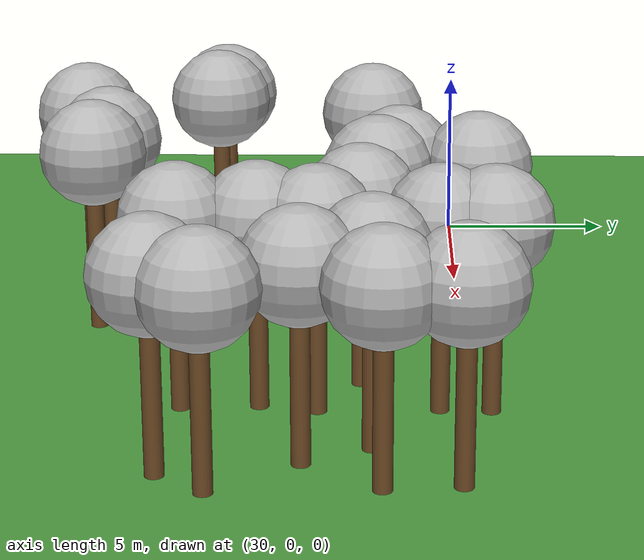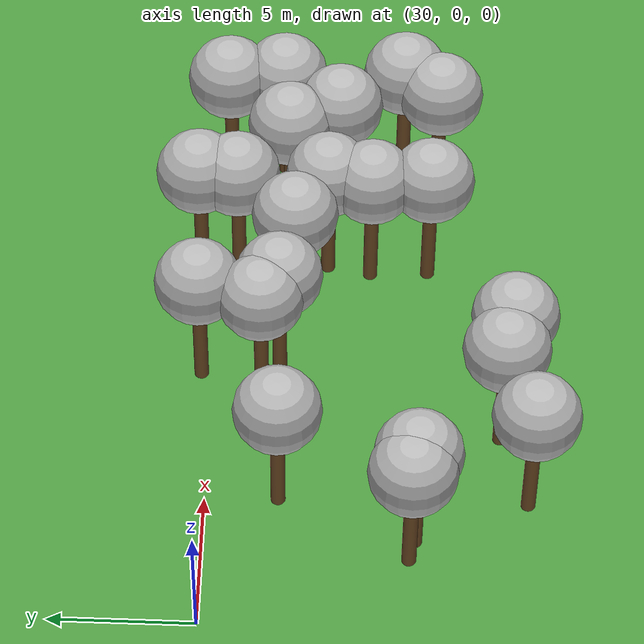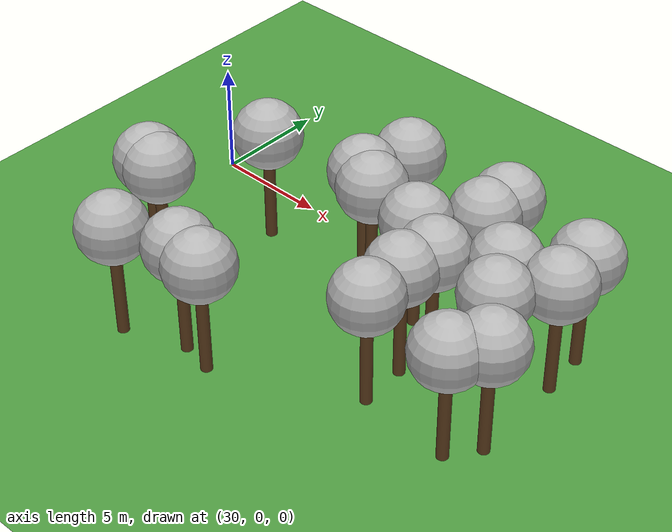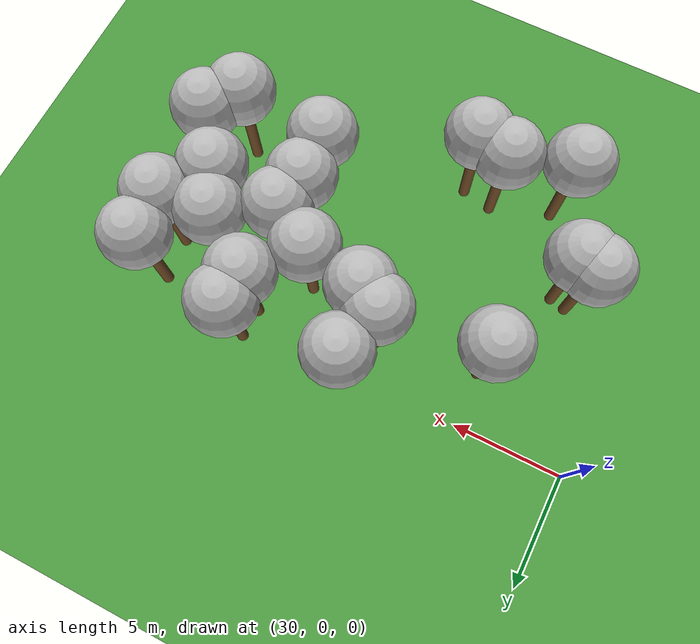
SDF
<sdf version="1.5">
 <world name="default">
  <model name="tree_simple499">
   <static>1</static>
   <link name="link">
    <pose>0 0 0.1 0 -0 0</pose>
    <collision name="collision_trunk">
     <pose>0 0 2 0 -0 0</pose>
     <geometry><cylinder><radius>0.25</radius><length>4</length></cylinder></geometry>
    </collision>
    <collision name="collision_treetop">
     <pose>0 0 5.2 0 -0 0</pose>
     <geometry><sphere><radius>1.5</radius></sphere></geometry>
    </collision>
    <visual name="trunk">
     <pose>0 0 2 0 -0 0</pose>
     <geometry><cylinder><radius>0.25</radius><length>4</length></cylinder></geometry>
     <material>
      <script>
       <uri>model://tree_simple/scripts</uri>
       <uri>model://tree_simple/materials/textures</uri>
       <name>TreeSimple/Trunk</name>
      </script>
     </material>
    </visual>
    <visual name="treetop">
     <pose>0 0 5.2 0 -0 0</pose>
     <geometry><sphere><radius>1.5</radius></sphere></geometry>
     <material>
      <script>
       <uri>model://tree_simple/scripts</uri>
       <uri>model://tree_simple/materials/textures</uri>
       <name>TreeSimple/Treetop</name>
      </script>
     </material>
    </visual>
   </link>
   <pose>49.5772894431 -0.301033806291 0 0 -0 0</pose>
  </model>
  <model name="tree_simple468">
   <static>1</static>
   <link name="link">
    <pose>0 0 0.1 0 -0 0</pose>
    <collision name="collision_trunk">
     <pose>0 0 2 0 -0 0</pose>
     <geometry><cylinder><radius>0.25</radius><length>4</length></cylinder></geometry>
    </collision>
    <collision name="collision_treetop">
     <pose>0 0 5.2 0 -0 0</pose>
     <geometry><sphere><radius>1.5</radius></sphere></geometry>
    </collision>
    <visual name="trunk">
     <pose>0 0 2 0 -0 0</pose>
     <geometry><cylinder><radius>0.25</radius><length>4</length></cylinder></geometry>
     <material>
      <script>
       <uri>model://tree_simple/scripts</uri>
       <uri>model://tree_simple/materials/textures</uri>
       <name>TreeSimple/Trunk</name>
      </script>
     </material>
    </visual>
    <visual name="treetop">
     <pose>0 0 5.2 0 -0 0</pose>
     <geometry><sphere><radius>1.5</radius></sphere></geometry>
     <material>
      <script>
       <uri>model://tree_simple/scripts</uri>
       <uri>model://tree_simple/materials/textures</uri>
       <name>TreeSimple/Treetop</name>
      </script>
     </material>
    </visual>
   </link>
   <pose>33.4354348071 -7.20044037788 0 0 -0 0</pose>
  </model>
  <model name="tree_simple391">
   <static>1</static>
   <link name="link">
    <pose>0 0 0.1 0 -0 0</pose>
    <collision name="collision_trunk">
     <pose>0 0 2 0 -0 0</pose>
     <geometry><cylinder><radius>0.25</radius><length>4</length></cylinder></geometry>
    </collision>
    <collision name="collision_treetop">
     <pose>0 0 5.2 0 -0 0</pose>
     <geometry><sphere><radius>1.5</radius></sphere></geometry>
    </collision>
    <visual name="trunk">
     <pose>0 0 2 0 -0 0</pose>
     <geometry><cylinder><radius>0.25</radius><length>4</length></cylinder></geometry>
     <material>
      <script>
       <uri>model://tree_simple/scripts</uri>
       <uri>model://tree_simple/materials/textures</uri>
       <name>TreeSimple/Trunk</name>
      </script>
     </material>
    </visual>
    <visual name="treetop">
     <pose>0 0 5.2 0 -0 0</pose>
     <geometry><sphere><radius>1.5</radius></sphere></geometry>
     <material>
      <script>
       <uri>model://tree_simple/scripts</uri>
       <uri>model://tree_simple/materials/textures</uri>
       <name>TreeSimple/Treetop</name>
      </script>
     </material>
    </visual>
   </link>
   <pose>35.0521422103 -11.0450283788 0 0 -0 0</pose>
  </model>
  <model name="tree_simple385">
   <static>1</static>
   <link name="link">
    <pose>0 0 0.1 0 -0 0</pose>
    <collision name="collision_trunk">
     <pose>0 0 2 0 -0 0</pose>
     <geometry><cylinder><radius>0.25</radius><length>4</length></cylinder></geometry>
    </collision>
    <collision name="collision_treetop">
     <pose>0 0 5.2 0 -0 0</pose>
     <geometry><sphere><radius>1.5</radius></sphere></geometry>
    </collision>
    <visual name="trunk">
     <pose>0 0 2 0 -0 0</pose>
     <geometry><cylinder><radius>0.25</radius><length>4</length></cylinder></geometry>
     <material>
      <script>
       <uri>model://tree_simple/scripts</uri>
       <uri>model://tree_simple/materials/textures</uri>
       <name>TreeSimple/Trunk</name>
      </script>
     </material>
    </visual>
    <visual name="treetop">
     <pose>0 0 5.2 0 -0 0</pose>
     <geometry><sphere><radius>1.5</radius></sphere></geometry>
     <material>
      <script>
       <uri>model://tree_simple/scripts</uri>
       <uri>model://tree_simple/materials/textures</uri>
       <name>TreeSimple/Treetop</name>
      </script>
     </material>
    </visual>
   </link>
   <pose>32.6946046779 -7.01468529962 0 0 -0 0</pose>
  </model>
  <model name="tree_simple380">
   <static>1</static>
   <link name="link">
    <pose>0 0 0.1 0 -0 0</pose>
    <collision name="collision_trunk">
     <pose>0 0 2 0 -0 0</pose>
     <geometry><cylinder><radius>0.25</radius><length>4</length></cylinder></geometry>
    </collision>
    <collision name="collision_treetop">
     <pose>0 0 5.2 0 -0 0</pose>
     <geometry><sphere><radius>1.5</radius></sphere></geometry>
    </collision>
    <visual name="trunk">
     <pose>0 0 2 0 -0 0</pose>
     <geometry><cylinder><radius>0.25</radius><length>4</length></cylinder></geometry>
     <material>
      <script>
       <uri>model://tree_simple/scripts</uri>
       <uri>model://tree_simple/materials/textures</uri>
       <name>TreeSimple/Trunk</name>
      </script>
     </material>
    </visual>
    <visual name="treetop">
     <pose>0 0 5.2 0 -0 0</pose>
     <geometry><sphere><radius>1.5</radius></sphere></geometry>
     <material>
      <script>
       <uri>model://tree_simple/scripts</uri>
       <uri>model://tree_simple/materials/textures</uri>
       <name>TreeSimple/Treetop</name>
      </script>
     </material>
    </visual>
   </link>
   <pose>49.0222625073 -7.79616728684 0 0 -0 0</pose>
  </model>
  <model name="tree_simple378">
   <static>1</static>
   <link name="link">
    <pose>0 0 0.1 0 -0 0</pose>
    <collision name="collision_trunk">
     <pose>0 0 2 0 -0 0</pose>
     <geometry><cylinder><radius>0.25</radius><length>4</length></cylinder></geometry>
    </collision>
    <collision name="collision_treetop">
     <pose>0 0 5.2 0 -0 0</pose>
     <geometry><sphere><radius>1.5</radius></sphere></geometry>
    </collision>
    <visual name="trunk">
     <pose>0 0 2 0 -0 0</pose>
     <geometry><cylinder><radius>0.25</radius><length>4</length></cylinder></geometry>
     <material>
      <script>
       <uri>model://tree_simple/scripts</uri>
       <uri>model://tree_simple/materials/textures</uri>
       <name>TreeSimple/Trunk</name>
      </script>
     </material>
    </visual>
    <visual name="treetop">
     <pose>0 0 5.2 0 -0 0</pose>
     <geometry><sphere><radius>1.5</radius></sphere></geometry>
     <material>
      <script>
       <uri>model://tree_simple/scripts</uri>
       <uri>model://tree_simple/materials/textures</uri>
       <name>TreeSimple/Treetop</name>
      </script>
     </material>
    </visual>
   </link>
   <pose>45.079812121 -0.754391736344 0 0 -0 0</pose>
  </model>
  <model name="tree_simple363">
   <static>1</static>
   <link name="link">
    <pose>0 0 0.1 0 -0 0</pose>
    <collision name="collision_trunk">
     <pose>0 0 2 0 -0 0</pose>
     <geometry><cylinder><radius>0.25</radius><length>4</length></cylinder></geometry>
    </collision>
    <collision name="collision_treetop">
     <pose>0 0 5.2 0 -0 0</pose>
     <geometry><sphere><radius>1.5</radius></sphere></geometry>
    </collision>
    <visual name="trunk">
     <pose>0 0 2 0 -0 0</pose>
     <geometry><cylinder><radius>0.25</radius><length>4</length></cylinder></geometry>
     <material>
      <script>
       <uri>model://tree_simple/scripts</uri>
       <uri>model://tree_simple/materials/textures</uri>
       <name>TreeSimple/Trunk</name>
      </script>
     </material>
    </visual>
    <visual name="treetop">
     <pose>0 0 5.2 0 -0 0</pose>
     <geometry><sphere><radius>1.5</radius></sphere></geometry>
     <material>
      <script>
       <uri>model://tree_simple/scripts</uri>
       <uri>model://tree_simple/materials/textures</uri>
       <name>TreeSimple/Treetop</name>
      </script>
     </material>
    </visual>
   </link>
   <pose>45.144398785 0.58220424318 0 0 -0 0</pose>
  </model>
  <model name="tree_simple352">
   <static>1</static>
   <link name="link">
    <pose>0 0 0.1 0 -0 0</pose>
    <collision name="collision_trunk">
     <pose>0 0 2 0 -0 0</pose>
     <geometry><cylinder><radius>0.25</radius><length>4</length></cylinder></geometry>
    </collision>
    <collision name="collision_treetop">
     <pose>0 0 5.2 0 -0 0</pose>
     <geometry><sphere><radius>1.5</radius></sphere></geometry>
    </collision>
    <visual name="trunk">
     <pose>0 0 2 0 -0 0</pose>
     <geometry><cylinder><radius>0.25</radius><length>4</length></cylinder></geometry>
     <material>
      <script>
       <uri>model://tree_simple/scripts</uri>
       <uri>model://tree_simple/materials/textures</uri>
       <name>TreeSimple/Trunk</name>
      </script>
     </material>
    </visual>
    <visual name="treetop">
     <pose>0 0 5.2 0 -0 0</pose>
     <geometry><sphere><radius>1.5</radius></sphere></geometry>
     <material>
      <script>
       <uri>model://tree_simple/scripts</uri>
       <uri>model://tree_simple/materials/textures</uri>
       <name>TreeSimple/Treetop</name>
      </script>
     </material>
    </visual>
   </link>
   <pose>37.7714253308 -10.085576638 0 0 -0 0</pose>
  </model>
  <model name="tree_simple244">
   <static>1</static>
   <link name="link">
    <pose>0 0 0.1 0 -0 0</pose>
    <collision name="collision_trunk">
     <pose>0 0 2 0 -0 0</pose>
     <geometry><cylinder><radius>0.25</radius><length>4</length></cylinder></geometry>
    </collision>
    <collision name="collision_treetop">
     <pose>0 0 5.2 0 -0 0</pose>
     <geometry><sphere><radius>1.5</radius></sphere></geometry>
    </collision>
    <visual name="trunk">
     <pose>0 0 2 0 -0 0</pose>
     <geometry><cylinder><radius>0.25</radius><length>4</length></cylinder></geometry>
     <material>
      <script>
       <uri>model://tree_simple/scripts</uri>
       <uri>model://tree_simple/materials/textures</uri>
       <name>TreeSimple/Trunk</name>
      </script>
     </material>
    </visual>
    <visual name="treetop">
     <pose>0 0 5.2 0 -0 0</pose>
     <geometry><sphere><radius>1.5</radius></sphere></geometry>
     <material>
      <script>
       <uri>model://tree_simple/scripts</uri>
       <uri>model://tree_simple/materials/textures</uri>
       <name>TreeSimple/Treetop</name>
      </script>
     </material>
    </visual>
   </link>
   <pose>45.1720023685 -3.9344800414 0 0 -0 0</pose>
  </model>
  <model name="tree_simple235">
   <static>1</static>
   <link name="link">
    <pose>0 0 0.1 0 -0 0</pose>
    <collision name="collision_trunk">
     <pose>0 0 2 0 -0 0</pose>
     <geometry><cylinder><radius>0.25</radius><length>4</length></cylinder></geometry>
    </collision>
    <collision name="collision_treetop">
     <pose>0 0 5.2 0 -0 0</pose>
     <geometry><sphere><radius>1.5</radius></sphere></geometry>
    </collision>
    <visual name="trunk">
     <pose>0 0 2 0 -0 0</pose>
     <geometry><cylinder><radius>0.25</radius><length>4</length></cylinder></geometry>
     <material>
      <script>
       <uri>model://tree_simple/scripts</uri>
       <uri>model://tree_simple/materials/textures</uri>
       <name>TreeSimple/Trunk</name>
      </script>
     </material>
    </visual>
    <visual name="treetop">
     <pose>0 0 5.2 0 -0 0</pose>
     <geometry><sphere><radius>1.5</radius></sphere></geometry>
     <material>
      <script>
       <uri>model://tree_simple/scripts</uri>
       <uri>model://tree_simple/materials/textures</uri>
       <name>TreeSimple/Treetop</name>
      </script>
     </material>
    </visual>
   </link>
   <pose>47.4649473564 -2.51877980815 0 0 -0 0</pose>
  </model>
  <model name="tree_simple217">
   <static>1</static>
   <link name="link">
    <pose>0 0 0.1 0 -0 0</pose>
    <collision name="collision_trunk">
     <pose>0 0 2 0 -0 0</pose>
     <geometry><cylinder><radius>0.25</radius><length>4</length></cylinder></geometry>
    </collision>
    <collision name="collision_treetop">
     <pose>0 0 5.2 0 -0 0</pose>
     <geometry><sphere><radius>1.5</radius></sphere></geometry>
    </collision>
    <visual name="trunk">
     <pose>0 0 2 0 -0 0</pose>
     <geometry><cylinder><radius>0.25</radius><length>4</length></cylinder></geometry>
     <material>
      <script>
       <uri>model://tree_simple/scripts</uri>
       <uri>model://tree_simple/materials/textures</uri>
       <name>TreeSimple/Trunk</name>
      </script>
     </material>
    </visual>
    <visual name="treetop">
     <pose>0 0 5.2 0 -0 0</pose>
     <geometry><sphere><radius>1.5</radius></sphere></geometry>
     <material>
      <script>
       <uri>model://tree_simple/scripts</uri>
       <uri>model://tree_simple/materials/textures</uri>
       <name>TreeSimple/Treetop</name>
      </script>
     </material>
    </visual>
   </link>
   <pose>49.7701486167 -2.25839681325 0 0 -0 0</pose>
  </model>
  <model name="tree_simple210">
   <static>1</static>
   <link name="link">
    <pose>0 0 0.1 0 -0 0</pose>
    <collision name="collision_trunk">
     <pose>0 0 2 0 -0 0</pose>
     <geometry><cylinder><radius>0.25</radius><length>4</length></cylinder></geometry>
    </collision>
    <collision name="collision_treetop">
     <pose>0 0 5.2 0 -0 0</pose>
     <geometry><sphere><radius>1.5</radius></sphere></geometry>
    </collision>
    <visual name="trunk">
     <pose>0 0 2 0 -0 0</pose>
     <geometry><cylinder><radius>0.25</radius><length>4</length></cylinder></geometry>
     <material>
      <script>
       <uri>model://tree_simple/scripts</uri>
       <uri>model://tree_simple/materials/textures</uri>
       <name>TreeSimple/Trunk</name>
      </script>
     </material>
    </visual>
    <visual name="treetop">
     <pose>0 0 5.2 0 -0 0</pose>
     <geometry><sphere><radius>1.5</radius></sphere></geometry>
     <material>
      <script>
       <uri>model://tree_simple/scripts</uri>
       <uri>model://tree_simple/materials/textures</uri>
       <name>TreeSimple/Treetop</name>
      </script>
     </material>
    </visual>
   </link>
   <pose>49.9611404215 -6.54237160605 0 0 -0 0</pose>
  </model>
  <model name="tree_simple204">
   <static>1</static>
   <link name="link">
    <pose>0 0 0.1 0 -0 0</pose>
    <collision name="collision_trunk">
     <pose>0 0 2 0 -0 0</pose>
     <geometry><cylinder><radius>0.25</radius><length>4</length></cylinder></geometry>
    </collision>
    <collision name="collision_treetop">
     <pose>0 0 5.2 0 -0 0</pose>
     <geometry><sphere><radius>1.5</radius></sphere></geometry>
    </collision>
    <visual name="trunk">
     <pose>0 0 2 0 -0 0</pose>
     <geometry><cylinder><radius>0.25</radius><length>4</length></cylinder></geometry>
     <material>
      <script>
       <uri>model://tree_simple/scripts</uri>
       <uri>model://tree_simple/materials/textures</uri>
       <name>TreeSimple/Trunk</name>
      </script>
     </material>
    </visual>
    <visual name="treetop">
     <pose>0 0 5.2 0 -0 0</pose>
     <geometry><sphere><radius>1.5</radius></sphere></geometry>
     <material>
      <script>
       <uri>model://tree_simple/scripts</uri>
       <uri>model://tree_simple/materials/textures</uri>
       <name>TreeSimple/Treetop</name>
      </script>
     </material>
    </visual>
   </link>
   <pose>40.6572947186 -2.37352514754 0 0 -0 0</pose>
  </model>
  <model name="tree_simple203">
   <static>1</static>
   <link name="link">
    <pose>0 0 0.1 0 -0 0</pose>
    <collision name="collision_trunk">
     <pose>0 0 2 0 -0 0</pose>
     <geometry><cylinder><radius>0.25</radius><length>4</length></cylinder></geometry>
    </collision>
    <collision name="collision_treetop">
     <pose>0 0 5.2 0 -0 0</pose>
     <geometry><sphere><radius>1.5</radius></sphere></geometry>
    </collision>
    <visual name="trunk">
     <pose>0 0 2 0 -0 0</pose>
     <geometry><cylinder><radius>0.25</radius><length>4</length></cylinder></geometry>
     <material>
      <script>
       <uri>model://tree_simple/scripts</uri>
       <uri>model://tree_simple/materials/textures</uri>
       <name>TreeSimple/Trunk</name>
      </script>
     </material>
    </visual>
    <visual name="treetop">
     <pose>0 0 5.2 0 -0 0</pose>
     <geometry><sphere><radius>1.5</radius></sphere></geometry>
     <material>
      <script>
       <uri>model://tree_simple/scripts</uri>
       <uri>model://tree_simple/materials/textures</uri>
       <name>TreeSimple/Treetop</name>
      </script>
     </material>
    </visual>
   </link>
   <pose>48.3599333119 -4.25982043144 0 0 -0 0</pose>
  </model>
  <model name="tree_simple192">
   <static>1</static>
   <link name="link">
    <pose>0 0 0.1 0 -0 0</pose>
    <collision name="collision_trunk">
     <pose>0 0 2 0 -0 0</pose>
     <geometry><cylinder><radius>0.25</radius><length>4</length></cylinder></geometry>
    </collision>
    <collision name="collision_treetop">
     <pose>0 0 5.2 0 -0 0</pose>
     <geometry><sphere><radius>1.5</radius></sphere></geometry>
    </collision>
    <visual name="trunk">
     <pose>0 0 2 0 -0 0</pose>
     <geometry><cylinder><radius>0.25</radius><length>4</length></cylinder></geometry>
     <material>
      <script>
       <uri>model://tree_simple/scripts</uri>
       <uri>model://tree_simple/materials/textures</uri>
       <name>TreeSimple/Trunk</name>
      </script>
     </material>
    </visual>
    <visual name="treetop">
     <pose>0 0 5.2 0 -0 0</pose>
     <geometry><sphere><radius>1.5</radius></sphere></geometry>
     <material>
      <script>
       <uri>model://tree_simple/scripts</uri>
       <uri>model://tree_simple/materials/textures</uri>
       <name>TreeSimple/Treetop</name>
      </script>
     </material>
    </visual>
   </link>
   <pose>39.1897553286 -10.376920586 0 0 -0 0</pose>
  </model>
  <model name="tree_simple118">
   <static>1</static>
   <link name="link">
    <pose>0 0 0.1 0 -0 0</pose>
    <collision name="collision_trunk">
     <pose>0 0 2 0 -0 0</pose>
     <geometry><cylinder><radius>0.25</radius><length>4</length></cylinder></geometry>
    </collision>
    <collision name="collision_treetop">
     <pose>0 0 5.2 0 -0 0</pose>
     <geometry><sphere><radius>1.5</radius></sphere></geometry>
    </collision>
    <visual name="trunk">
     <pose>0 0 2 0 -0 0</pose>
     <geometry><cylinder><radius>0.25</radius><length>4</length></cylinder></geometry>
     <material>
      <script>
       <uri>model://tree_simple/scripts</uri>
       <uri>model://tree_simple/materials/textures</uri>
       <name>TreeSimple/Trunk</name>
      </script>
     </material>
    </visual>
    <visual name="treetop">
     <pose>0 0 5.2 0 -0 0</pose>
     <geometry><sphere><radius>1.5</radius></sphere></geometry>
     <material>
      <script>
       <uri>model://tree_simple/scripts</uri>
       <uri>model://tree_simple/materials/textures</uri>
       <name>TreeSimple/Treetop</name>
      </script>
     </material>
    </visual>
   </link>
   <pose>35.015129688 -2.52683434866 0 0 -0 0</pose>
  </model>
  <model name="tree_simple68">
   <static>1</static>
   <link name="link">
    <pose>0 0 0.1 0 -0 0</pose>
    <collision name="collision_trunk">
     <pose>0 0 2 0 -0 0</pose>
     <geometry><cylinder><radius>0.25</radius><length>4</length></cylinder></geometry>
    </collision>
    <collision name="collision_treetop">
     <pose>0 0 5.2 0 -0 0</pose>
     <geometry><sphere><radius>1.5</radius></sphere></geometry>
    </collision>
    <visual name="trunk">
     <pose>0 0 2 0 -0 0</pose>
     <geometry><cylinder><radius>0.25</radius><length>4</length></cylinder></geometry>
     <material>
      <script>
       <uri>model://tree_simple/scripts</uri>
       <uri>model://tree_simple/materials/textures</uri>
       <name>TreeSimple/Trunk</name>
      </script>
     </material>
    </visual>
    <visual name="treetop">
     <pose>0 0 5.2 0 -0 0</pose>
     <geometry><sphere><radius>1.5</radius></sphere></geometry>
     <material>
      <script>
       <uri>model://tree_simple/scripts</uri>
       <uri>model://tree_simple/materials/textures</uri>
       <name>TreeSimple/Treetop</name>
      </script>
     </material>
    </visual>
   </link>
   <pose>43.3405594591 -2.82078180006 0 0 -0 0</pose>
  </model>
  <model name="tree_simple54">
   <static>1</static>
   <link name="link">
    <pose>0 0 0.1 0 -0 0</pose>
    <collision name="collision_trunk">
     <pose>0 0 2 0 -0 0</pose>
     <geometry><cylinder><radius>0.25</radius><length>4</length></cylinder></geometry>
    </collision>
    <collision name="collision_treetop">
     <pose>0 0 5.2 0 -0 0</pose>
     <geometry><sphere><radius>1.5</radius></sphere></geometry>
    </collision>
    <visual name="trunk">
     <pose>0 0 2 0 -0 0</pose>
     <geometry><cylinder><radius>0.25</radius><length>4</length></cylinder></geometry>
     <material>
      <script>
       <uri>model://tree_simple/scripts</uri>
       <uri>model://tree_simple/materials/textures</uri>
       <name>TreeSimple/Trunk</name>
      </script>
     </material>
    </visual>
    <visual name="treetop">
     <pose>0 0 5.2 0 -0 0</pose>
     <geometry><sphere><radius>1.5</radius></sphere></geometry>
     <material>
      <script>
       <uri>model://tree_simple/scripts</uri>
       <uri>model://tree_simple/materials/textures</uri>
       <name>TreeSimple/Treetop</name>
      </script>
     </material>
    </visual>
   </link>
   <pose>40.2707740498 0.36304299765 0 0 -0 0</pose>
  </model>
  <model name="tree_simple28">
   <static>1</static>
   <link name="link">
    <pose>0 0 0.1 0 -0 0</pose>
    <collision name="collision_trunk">
     <pose>0 0 2 0 -0 0</pose>
     <geometry><cylinder><radius>0.25</radius><length>4</length></cylinder></geometry>
    </collision>
    <collision name="collision_treetop">
     <pose>0 0 5.2 0 -0 0</pose>
     <geometry><sphere><radius>1.5</radius></sphere></geometry>
    </collision>
    <visual name="trunk">
     <pose>0 0 2 0 -0 0</pose>
     <geometry><cylinder><radius>0.25</radius><length>4</length></cylinder></geometry>
     <material>
      <script>
       <uri>model://tree_simple/scripts</uri>
       <uri>model://tree_simple/materials/textures</uri>
       <name>TreeSimple/Trunk</name>
      </script>
     </material>
    </visual>
    <visual name="treetop">
     <pose>0 0 5.2 0 -0 0</pose>
     <geometry><sphere><radius>1.5</radius></sphere></geometry>
     <material>
      <script>
       <uri>model://tree_simple/scripts</uri>
       <uri>model://tree_simple/materials/textures</uri>
       <name>TreeSimple/Treetop</name>
      </script>
     </material>
    </visual>
   </link>
   <pose>44.9993852847 -7.51228385963 0 0 -0 0</pose>
  </model>
  <model name="tree_simple19">
   <static>1</static>
   <link name="link">
    <pose>0 0 0.1 0 -0 0</pose>
    <collision name="collision_trunk">
     <pose>0 0 2 0 -0 0</pose>
     <geometry><cylinder><radius>0.25</radius><length>4</length></cylinder></geometry>
    </collision>
    <collision name="collision_treetop">
     <pose>0 0 5.2 0 -0 0</pose>
     <geometry><sphere><radius>1.5</radius></sphere></geometry>
    </collision>
    <visual name="trunk">
     <pose>0 0 2 0 -0 0</pose>
     <geometry><cylinder><radius>0.25</radius><length>4</length></cylinder></geometry>
     <material>
      <script>
       <uri>model://tree_simple/scripts</uri>
       <uri>model://tree_simple/materials/textures</uri>
       <name>TreeSimple/Trunk</name>
      </script>
     </material>
    </visual>
    <visual name="treetop">
     <pose>0 0 5.2 0 -0 0</pose>
     <geometry><sphere><radius>1.5</radius></sphere></geometry>
     <material>
      <script>
       <uri>model://tree_simple/scripts</uri>
       <uri>model://tree_simple/materials/textures</uri>
       <name>TreeSimple/Treetop</name>
      </script>
     </material>
    </visual>
   </link>
   <pose>39.6710404754 -1.77882210198 0 0 -0 0</pose>
  </model>
  <model name="tree_simple6">
   <static>1</static>
   <link name="link">
    <pose>0 0 0.1 0 -0 0</pose>
    <collision name="collision_trunk">
     <pose>0 0 2 0 -0 0</pose>
     <geometry><cylinder><radius>0.25</radius><length>4</length></cylinder></geometry>
    </collision>
    <collision name="collision_treetop">
     <pose>0 0 5.2 0 -0 0</pose>
     <geometry><sphere><radius>1.5</radius></sphere></geometry>
    </collision>
    <visual name="trunk">
     <pose>0 0 2 0 -0 0</pose>
     <geometry><cylinder><radius>0.25</radius><length>4</length></cylinder></geometry>
     <material>
      <script>
       <uri>model://tree_simple/scripts</uri>
       <uri>model://tree_simple/materials/textures</uri>
       <name>TreeSimple/Trunk</name>
      </script>
     </material>
    </visual>
    <visual name="treetop">
     <pose>0 0 5.2 0 -0 0</pose>
     <geometry><sphere><radius>1.5</radius></sphere></geometry>
     <material>
      <script>
       <uri>model://tree_simple/scripts</uri>
       <uri>model://tree_simple/materials/textures</uri>
       <name>TreeSimple/Treetop</name>
      </script>
     </material>
    </visual>
   </link>
   <pose>44.880609436 -5.45728442978 0 0 -0 0</pose>
  </model>
  <model name="ground_plane">
   <static>true</static>
   <link name="link">
    <collision name="collision">
     <geometry><plane><normal>0 0 1</normal><size>250 250</size></plane></geometry>
     <surface><friction><ode><mu>1</mu><mu2>1</mu2></ode></friction></surface>
    </collision>
    <visual name="grass">
     <cast_shadows>false</cast_shadows>
     <geometry><plane><normal>0 0 1</normal><size>150 250</size></plane></geometry>
     <material>
      <script><uri>file://media/materials/scripts/Gazebo.material</uri><name>Gazebo/Grass</name></script>
     </material>
    </visual>
   </link>
  </model>
 </world>
</sdf>
